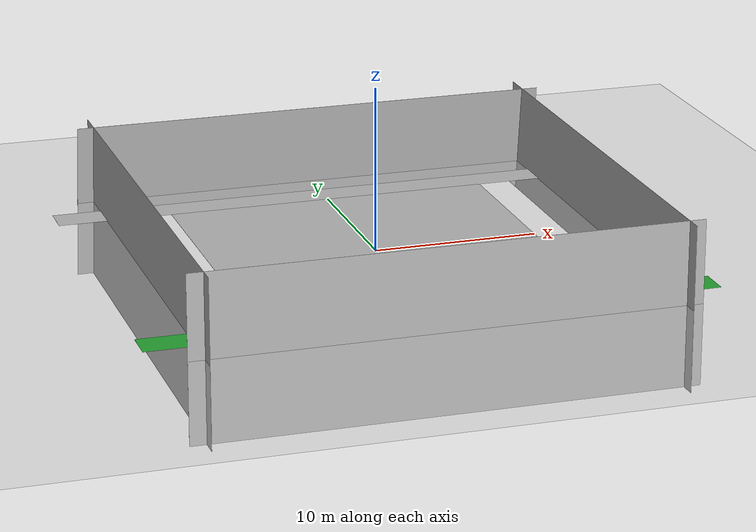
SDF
<?xml version="1.0" ?>
<sdf version='1.4'>
  <world name='default'>
    <light name='sun' type='directional'>
      <cast_shadows>1</cast_shadows>
      <pose>0 0 10 0 -0 0</pose>
      <diffuse>0.8 0.8 0.8 1</diffuse>
      <specular>0.2 0.2 0.2 1</specular>
      <attenuation>
        <range>1000</range>
        <constant>0.9</constant>
        <linear>0.01</linear>
        <quadratic>0.001</quadratic>
      </attenuation>
      <direction>-0.5 0.1 -0.9</direction>
    </light>
    <model name='ground_plane'>
      <static>1</static>
      <link name='link'>
        <collision name='collision'>
          <geometry>
            <plane>
              <normal>0 0 1</normal>
              <size>100 100</size>
            </plane>
          </geometry>
          <surface>
            <friction>
              <ode>
                <mu>100</mu>
                <mu2>50</mu2>
              </ode>
            </friction>
            <bounce/>
            <contact>
              <ode/>
            </contact>
          </surface>
          <max_contacts>10</max_contacts>
        </collision>
        <visual name='visual'>
          <cast_shadows>0</cast_shadows>
          <geometry>
            <plane>
              <normal>0 0 1</normal>
              <size>100 100</size>
            </plane>
          </geometry>
          <material>
            <script>
              <uri>file://media/materials/scripts/gazebo.material</uri>
              <name>Gazebo/Grey</name>
            </script>
          </material>
        </visual>
        <velocity_decay>
          <linear>0</linear>
          <angular>0</angular>
        </velocity_decay>
        <self_collide>0</self_collide>
        <kinematic>0</kinematic>
        <gravity>1</gravity>
      </link>
    </model>
    <physics type='ode'>
      <max_step_size>0.001</max_step_size>
      <real_time_factor>1</real_time_factor>
      <real_time_update_rate>1000</real_time_update_rate>
      <gravity>0 0 -9.8</gravity>
    </physics>
    <scene>
      <ambient>0.4 0.4 0.4 1</ambient>
      <background>0.7 0.7 0.7 1</background>
      <shadows>1</shadows>
    </scene>

    <include>
      <uri>model://quad_simulator/models/iarc_with_walls</uri>
      <pose>0 0 0 0 0 0</pose>
    </include>

    <gui fullscreen='0'>
      <camera name='user_camera'>
        <pose>0 0 10 0 1.57 0</pose>
        <view_controller>orbit</view_controller>
      </camera>
    </gui>
  </world>
</sdf>

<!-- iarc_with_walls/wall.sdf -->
<sdf version="1.4">
  <model name="IARC 3D Simulation arena">
    <static>true</static>

    <link name="field">
      <pose>0 0 0.01 0 0 0</pose>
      <collision name="collision">
        <geometry>
          <plane>
            <normal>0 0 1</normal>
            <size>20.0 20.0</size>
          </plane>
        </geometry>
        <surface>
          <friction>
            <ode>
              <mu>100</mu>
              <mu2>50</mu2>
            </ode>
          </friction>
        </surface>
      </collision>

      <visual name="base1">
        <pose>0 11 0.001 0 0 0</pose>
        <cast_shadows>false</cast_shadows>
        <geometry>
          <plane>
            <normal>0 0 1</normal>
            <size>34.0 2.0</size>
          </plane>
        </geometry>
        <material>
          <script>
            <uri>model://quad_simulator/models/iarc_with_walls/materials/scripts/</uri>
            <uri>model://quad_simulator/models/iarc_with_walls/materials/textures/</uri>
            <name>IARC/FieldBorder</name>
          </script>
        </material>
      </visual>

      <visual name="base2">
        <pose>0 -11 0.001 0 0 0</pose>
        <cast_shadows>false</cast_shadows>
        <geometry>
          <plane>
            <normal>0 0 1</normal>
            <size>34.0 2.0</size>
          </plane>
        </geometry>
        <material>
          <script>
            <uri>model://quad_simulator/models/iarc_with_walls/materials/scripts/</uri>
            <uri>model://quad_simulator/models/iarc_with_walls/materials/textures/</uri>
            <name>IARC/FieldBorderGreen</name>
          </script>
        </material>
      </visual>

      <visual name="base3">
        <pose>11 0 0.001 0 0 0</pose>
        <cast_shadows>false</cast_shadows>
        <geometry>
          <plane>
            <normal>0 0 1</normal>
            <size>2.0 20.0</size>
          </plane>
        </geometry>
        <material>
          <script>
            <uri>model://quad_simulator/models/iarc_with_walls/materials/scripts/</uri>
            <uri>model://quad_simulator/models/iarc_with_walls/materials/textures/</uri>
            <name>IARC/FieldBorderWhite</name>
          </script>
        </material>
      </visual>

      <visual name="base4">
        <pose>-11 0 0.001 0 0 0</pose>
        <cast_shadows>false</cast_shadows>
        <geometry>
          <plane>
            <normal>0 0 1</normal>
            <size>2.0 20.0</size>
          </plane>
        </geometry>
        <material>
          <script>
            <uri>model://quad_simulator/models/iarc_with_walls/materials/scripts/</uri>
            <uri>model://quad_simulator/models/iarc_with_walls/materials/textures/</uri>
            <name>IARC/FieldBorderWhite</name>
          </script>
        </material>
      </visual>

      <visual name="carpet">
        <cast_shadows>false</cast_shadows>
        <geometry>
          <plane>
            <normal>0 0 1</normal>
            <size>20.0 20.0</size>
          </plane>
        </geometry>
        <material>
          <script>
            <uri>model://quad_simulator/models/iarc_with_walls/materials/scripts/</uri>
            <uri>model://quad_simulator/models/iarc_with_walls/materials/textures/</uri>
            <name>IARC/Ground</name>
          </script>
        </material>
      </visual>

      <visual name="wall1">
        <pose>0 14 0.001 1.7 0 0</pose>
        <cast_shadows>false</cast_shadows>
        <geometry>
          <plane>
            <normal>0 0 1</normal>
            <size>30.0 10.0</size>
          </plane>
        </geometry>
        <material>
          <script>
            <uri>model://quad_simulator/models/iarc_with_walls/materials/scripts/</uri>
            <uri>model://quad_simulator/models/iarc_with_walls/materials/textures/</uri>
            <name>IARC/FieldWall</name>
          </script>
        </material>
      </visual>

      <visual name="wall2">
        <pose>0 -14 0.001 1.57 0 3.14</pose>
        <cast_shadows>false</cast_shadows>
        <geometry>
          <plane>
            <normal>0 0 1</normal>
            <size>30.0 10.0</size>
          </plane>
        </geometry>
        <material>
          <script>
            <uri>model://quad_simulator/models/iarc_with_walls/materials/scripts/</uri>
            <uri>model://quad_simulator/models/iarc_with_walls/materials/textures/</uri>
            <name>IARC/FieldWall</name>
          </script>
        </material>
      </visual>

      <visual name="wall3">
        <pose>14 0 0.001 1.57 0 -1.57</pose>
        <cast_shadows>false</cast_shadows>
        <geometry>
          <plane>
            <normal>0 0 1</normal>
            <size>30.0 10.0</size>
          </plane>
        </geometry>
        <material>
          <script>
            <uri>model://quad_simulator/models/iarc_with_walls/materials/scripts/</uri>
            <uri>model://quad_simulator/models/iarc_with_walls/materials/textures/</uri>
            <name>IARC/FieldWall</name>
          </script>
        </material>
      </visual>

      <visual name="wall4">
        <pose>-14 0 0.001 1.57 0 1.57</pose>
        <cast_shadows>false</cast_shadows>
        <geometry>
          <plane>
            <normal>0 0 1</normal>
            <size>30.0 10.0</size>
          </plane>
        </geometry>
        <material>
          <script>
            <uri>model://quad_simulator/models/iarc_with_walls/materials/scripts/</uri>
            <uri>model://quad_simulator/models/iarc_with_walls/materials/textures/</uri>
            <name>IARC/FieldWall</name>
          </script>
        </material>
      </visual>

    </link>
  </model>
</sdf>
